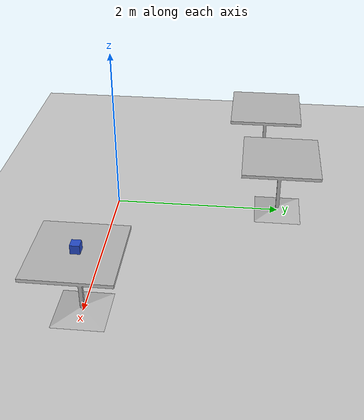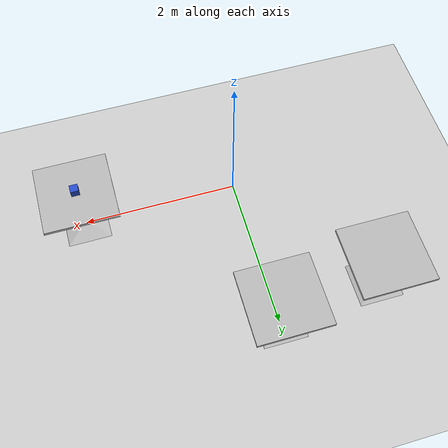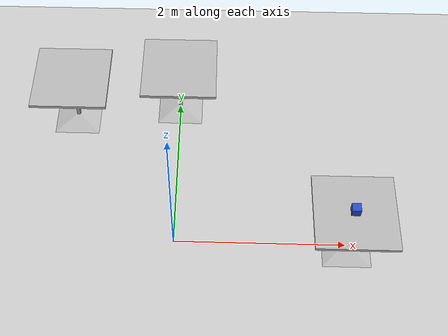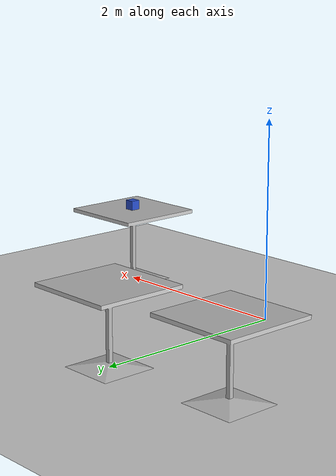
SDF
<sdf version="1.6">
 <world name="default">
  <light name="sun" type="directional">
   <pose>0 0 10 0 -0 0</pose>
   <diffuse>0.8 0.8 0.8 1</diffuse>
   <specular>0.2 0.2 0.2 1</specular>
   <attenuation>
    <range>1000</range>
    <constant>0.9</constant>
    <linear>0.01</linear>
    <quadratic>0.001</quadratic>
   </attenuation>
   <direction>-0.5 0.1 -0.9</direction>
  </light>
  <model name="ground_plane">
   <static>1</static>
   <link name="link">
    <collision name="collision">
     <geometry><plane><normal>0 0 1</normal><size>100 100</size></plane></geometry>
     <surface>
      <contact><collide_bitmask>65535</collide_bitmask></contact>
      <friction><ode><mu>100</mu><mu2>50</mu2></ode></friction>
     </surface>
    </collision>
    <visual name="visual">
     <cast_shadows>0</cast_shadows>
     <geometry><plane><normal>0 0 1</normal><size>100 100</size></plane></geometry>
     <material>
      <script><uri>file://media/materials/scripts/gazebo.material</uri><name>Gazebo/Grey</name></script>
     </material>
    </visual>
   </link>
  </model>
  <gravity>0 0 -9.8</gravity>
  <magnetic_field>6e-06 2.3e-05 -4.2e-05</magnetic_field>
  <atmosphere type="adiabatic"/>
  <physics name="default_physics" default="0" type="ode">
   <max_step_size>0.001</max_step_size>
   <real_time_factor>1</real_time_factor>
   <real_time_update_rate>1000</real_time_update_rate>
  </physics>
  <scene><ambient>0.4 0.4 0.4 1</ambient><background>0.7 0.7 0.7 1</background><shadows>1</shadows></scene>
  <audio><device>default</device></audio>
  <spherical_coordinates>
   <surface_model>EARTH_WGS84</surface_model>
   <latitude_deg>0</latitude_deg>
   <longitude_deg>0</longitude_deg>
   <elevation>0</elevation>
   <heading_deg>0</heading_deg>
  </spherical_coordinates>
  <model name="cafe_table">
   <static>1</static>
   <link name="link">
    <collision name="surface">
     <pose>0 0 0.755 0 -0 0</pose>
     <geometry><box><size>0.913 0.913 0.04</size></box></geometry>
    </collision>
    <collision name="column">
     <pose>0 0 0.37 0 -0 0</pose>
     <geometry><box><size>0.042 0.042 0.74</size></box></geometry>
    </collision>
    <collision name="base">
     <pose>0 0 0.02 0 -0 0</pose>
     <geometry><box><size>0.56 0.56 0.04</size></box></geometry>
    </collision>
    <visual name="visual">
     <geometry><mesh><uri>model://cafe_table/meshes/cafe_table.dae</uri></mesh></geometry>
    </visual>
   </link>
   <pose>2 0 0 0 -0 0</pose>
  </model>
  <model name="cafe_table_0">
   <static>1</static>
   <link name="link">
    <collision name="surface">
     <pose>0 0 0.755 0 -0 0</pose>
     <geometry><box><size>0.913 0.913 0.04</size></box></geometry>
    </collision>
    <collision name="column">
     <pose>0 0 0.37 0 -0 0</pose>
     <geometry><box><size>0.042 0.042 0.74</size></box></geometry>
    </collision>
    <collision name="base">
     <pose>0 0 0.02 0 -0 0</pose>
     <geometry><box><size>0.56 0.56 0.04</size></box></geometry>
    </collision>
    <visual name="visual">
     <geometry><mesh><uri>model://cafe_table/meshes/cafe_table.dae</uri></mesh></geometry>
    </visual>
   </link>
   <pose>0 2 0 0 -0 0</pose>
  </model>
  <model name="cafe_table_1">
   <static>1</static>
   <link name="link">
    <collision name="surface">
     <pose>0 0 0.755 0 -0 0</pose>
     <geometry><box><size>0.913 0.913 0.04</size></box></geometry>
    </collision>
    <collision name="column">
     <pose>0 0 0.37 0 -0 0</pose>
     <geometry><box><size>0.042 0.042 0.74</size></box></geometry>
    </collision>
    <collision name="base">
     <pose>0 0 0.02 0 -0 0</pose>
     <geometry><box><size>0.56 0.56 0.04</size></box></geometry>
    </collision>
    <visual name="visual">
     <geometry><mesh><uri>model://cafe_table/meshes/cafe_table.dae</uri></mesh></geometry>
    </visual>
   </link>
   <pose>-1.31098 1.8136 0 0 -0 0</pose>
  </model>
  <model name="unit_box">
   <link name="link">
    <inertial>
     <mass>1</mass>
     <inertia>
      <ixx>0.166667</ixx>
      <ixy>0</ixy>
      <ixz>0</ixz>
      <iyy>0.166667</iyy>
      <iyz>0</iyz>
      <izz>0.166667</izz>
     </inertia>
    </inertial>
    <gravity>0</gravity>
    <visual name="visual">
     <geometry><box><size>0.1 0.1 0.1</size></box></geometry>
     <material>
      <script><name>Gazebo/Blue</name><uri>file://media/materials/scripts/gazebo.material</uri></script>
      <shader type="vertex"><normal_map>__default__</normal_map></shader>
      <ambient>0 0 1 1</ambient>
      <diffuse>0 0.333 1 1</diffuse>
      <specular>0.01 0.01 0.01 1</specular>
      <emissive>0 0 0 1</emissive>
     </material>
    </visual>
    <collision name="collision">
     <geometry><box><size>0.1 0.1 0.1</size></box></geometry>
     <surface>
      <friction>
       <ode><mu>1</mu><mu2>1</mu2><fdir1>0 0 0</fdir1><slip1>0</slip1><slip2>0</slip2></ode>
       <torsional>
        <coefficient>1</coefficient>
        <patch_radius>0</patch_radius>
        <surface_radius>0</surface_radius>
        <use_patch_radius>1</use_patch_radius>
        <ode><slip>0</slip></ode>
       </torsional>
      </friction>
      <bounce><restitution_coefficient>0</restitution_coefficient><threshold>1e+06</threshold></bounce>
      <contact>
       <collide_without_contact>0</collide_without_contact>
       <collide_without_contact_bitmask>1</collide_without_contact_bitmask>
       <collide_bitmask>1</collide_bitmask>
       <ode>
        <soft_cfm>0</soft_cfm>
        <soft_erp>0.2</soft_erp>
        <kp>1e+13</kp>
        <kd>1</kd>
        <max_vel>0.01</max_vel>
        <min_depth>0</min_depth>
       </ode>
       <bullet>
        <split_impulse>1</split_impulse>
        <split_impulse_penetration_threshold>-0.01</split_impulse_penetration_threshold>
        <soft_cfm>0</soft_cfm>
        <soft_erp>0.2</soft_erp>
        <kp>1e+13</kp>
        <kd>1</kd>
       </bullet>
      </contact>
     </surface>
    </collision>
   </link>
   <static>0</static>
   <pose>2 -2e-06 0.825 0 -0 0.000227</pose>
  </model>
 </world>
</sdf>
